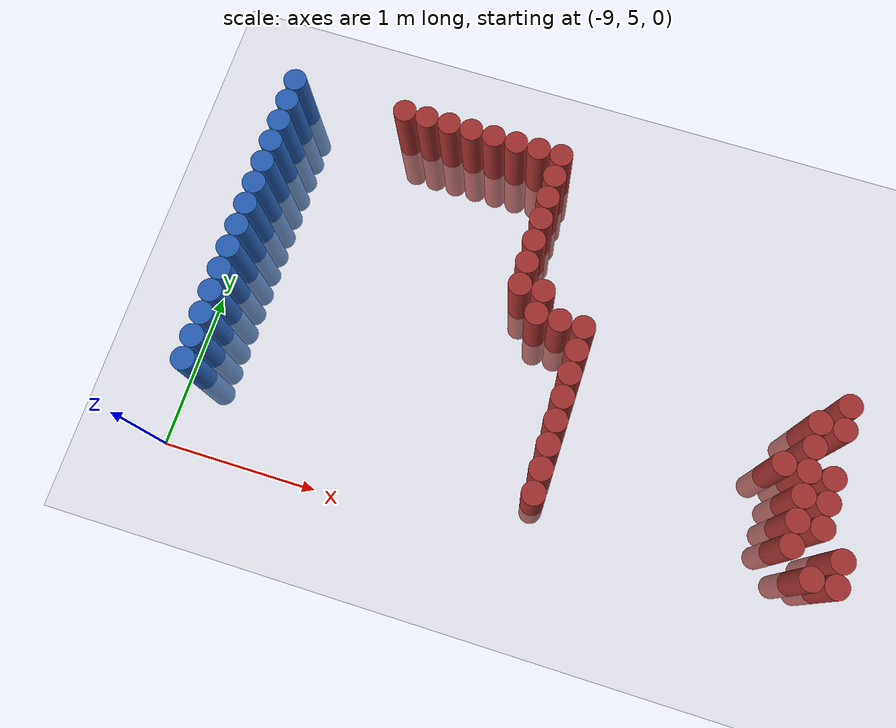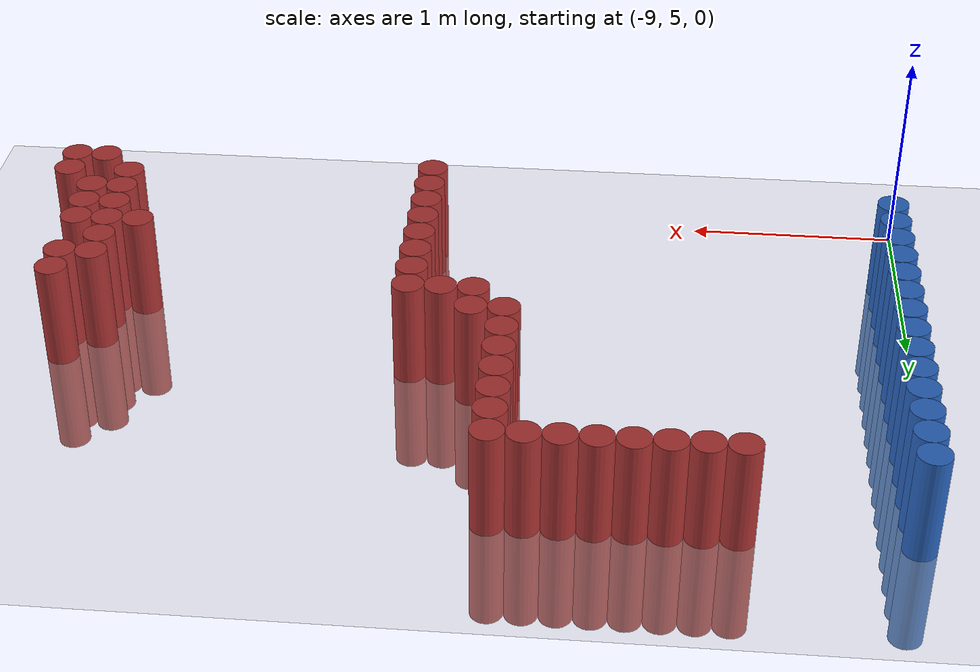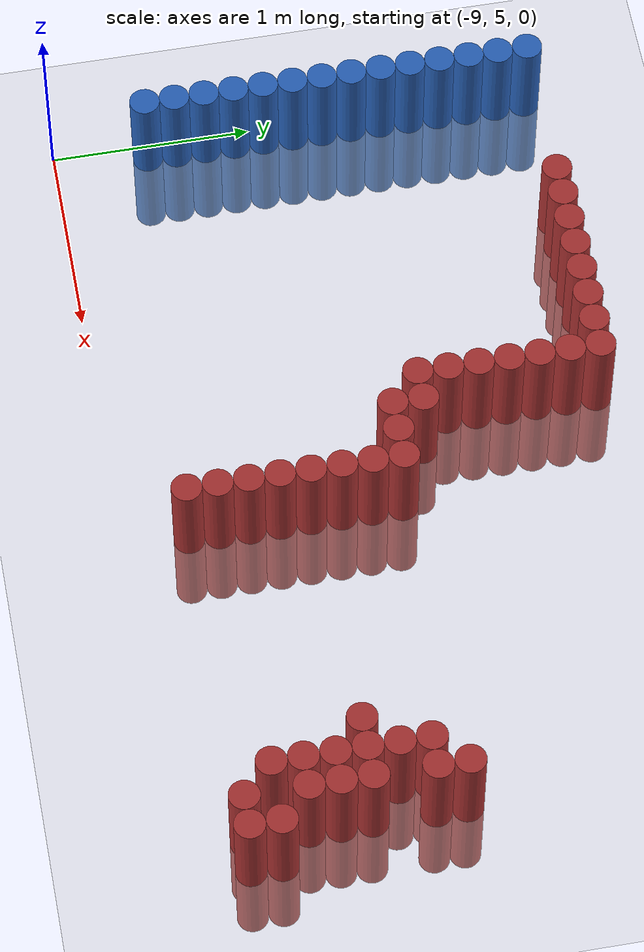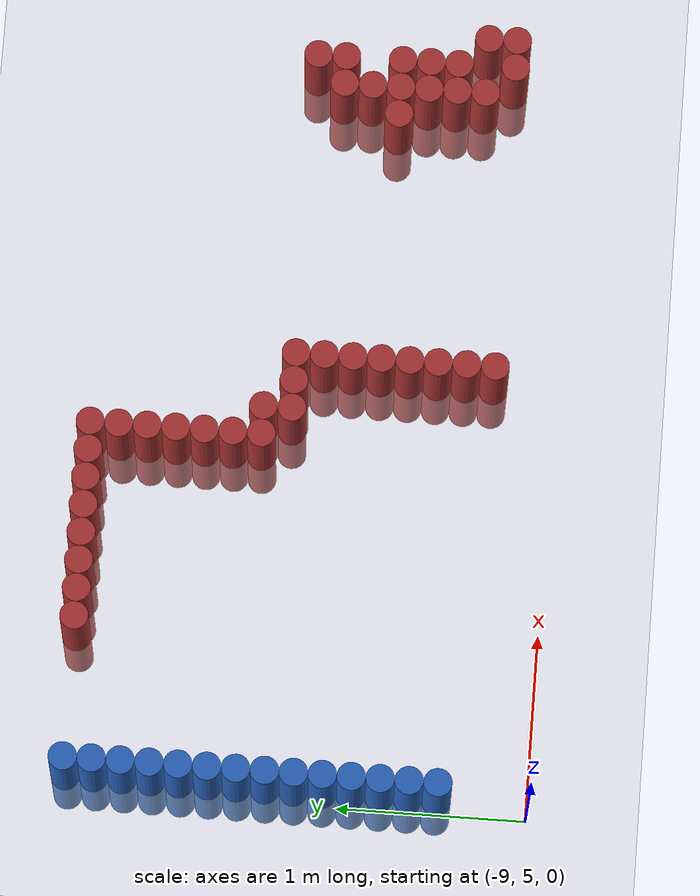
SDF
<sdf version="1.6">
 <world name="default">
  <model name="ground_plane">
   <static>1</static>
   <link name="link">
    <collision name="collision">
     <geometry><plane><normal>0 0 1</normal><size>100 100</size></plane></geometry>
     <surface><friction><ode><mu>100</mu><mu2>50</mu2></ode></friction></surface>
    </collision>
    <visual name="visual">
     <cast_shadows>0</cast_shadows>
     <geometry><plane><normal>0 0 1</normal><size>100 100</size></plane></geometry>
     <material>
      <script><uri>file://media/materials/scripts/gazebo.material</uri><name>Gazebo/Grey</name></script>
     </material>
    </visual>
   </link>
  </model>
  <model name="unit_cylinder_127">
   <static>1</static>
   <pose>-8.925000 5.475000 0.000000 0.000000 0.000000 0.000000</pose>
   <link name="link">
    <inertial>
     <mass>1</mass>
     <inertia><ixx>0.145833</ixx><ixy>0</ixy><ixz>0</ixz><iyy>0.145833</iyy><iyz>0</iyz><izz>0.125</izz></inertia>
    </inertial>
    <collision name="collision">
     <geometry><cylinder><radius>0.075000</radius><length>1</length></cylinder></geometry>
    </collision>
    <visual name="visual">
     <geometry><cylinder><radius>0.075000</radius><length>1</length></cylinder></geometry>
     <material>
      <ambient>0.152000 0.379000 0.720000 1</ambient>
      <diffuse>0.152000 0.379000 0.720000 1</diffuse>
     </material>
     <material>
      <script><name>Gazebo/Grey</name><uri>file://media/materials/scripts/gazebo.material</uri></script>
     </material>
    </visual>
   </link>
  </model>
  <model name="unit_cylinder_128">
   <static>1</static>
   <pose>-8.925000 5.625000 0.000000 0.000000 0.000000 0.000000</pose>
   <link name="link">
    <inertial>
     <mass>1</mass>
     <inertia><ixx>0.145833</ixx><ixy>0</ixy><ixz>0</ixz><iyy>0.145833</iyy><iyz>0</iyz><izz>0.125</izz></inertia>
    </inertial>
    <collision name="collision">
     <geometry><cylinder><radius>0.075000</radius><length>1</length></cylinder></geometry>
    </collision>
    <visual name="visual">
     <geometry><cylinder><radius>0.075000</radius><length>1</length></cylinder></geometry>
     <material>
      <ambient>0.152000 0.379000 0.720000 1</ambient>
      <diffuse>0.152000 0.379000 0.720000 1</diffuse>
     </material>
     <material>
      <script><name>Gazebo/Grey</name><uri>file://media/materials/scripts/gazebo.material</uri></script>
     </material>
    </visual>
   </link>
  </model>
  <model name="unit_cylinder_129">
   <static>1</static>
   <pose>-8.925000 5.775000 0.000000 0.000000 0.000000 0.000000</pose>
   <link name="link">
    <inertial>
     <mass>1</mass>
     <inertia><ixx>0.145833</ixx><ixy>0</ixy><ixz>0</ixz><iyy>0.145833</iyy><iyz>0</iyz><izz>0.125</izz></inertia>
    </inertial>
    <collision name="collision">
     <geometry><cylinder><radius>0.075000</radius><length>1</length></cylinder></geometry>
    </collision>
    <visual name="visual">
     <geometry><cylinder><radius>0.075000</radius><length>1</length></cylinder></geometry>
     <material>
      <ambient>0.152000 0.379000 0.720000 1</ambient>
      <diffuse>0.152000 0.379000 0.720000 1</diffuse>
     </material>
     <material>
      <script><name>Gazebo/Grey</name><uri>file://media/materials/scripts/gazebo.material</uri></script>
     </material>
    </visual>
   </link>
  </model>
  <model name="unit_cylinder_130">
   <static>1</static>
   <pose>-8.925000 5.925000 0.000000 0.000000 0.000000 0.000000</pose>
   <link name="link">
    <inertial>
     <mass>1</mass>
     <inertia><ixx>0.145833</ixx><ixy>0</ixy><ixz>0</ixz><iyy>0.145833</iyy><iyz>0</iyz><izz>0.125</izz></inertia>
    </inertial>
    <collision name="collision">
     <geometry><cylinder><radius>0.075000</radius><length>1</length></cylinder></geometry>
    </collision>
    <visual name="visual">
     <geometry><cylinder><radius>0.075000</radius><length>1</length></cylinder></geometry>
     <material>
      <ambient>0.152000 0.379000 0.720000 1</ambient>
      <diffuse>0.152000 0.379000 0.720000 1</diffuse>
     </material>
     <material>
      <script><name>Gazebo/Grey</name><uri>file://media/materials/scripts/gazebo.material</uri></script>
     </material>
    </visual>
   </link>
  </model>
  <model name="unit_cylinder_131">
   <static>1</static>
   <pose>-8.925000 6.075000 0.000000 0.000000 0.000000 0.000000</pose>
   <link name="link">
    <inertial>
     <mass>1</mass>
     <inertia><ixx>0.145833</ixx><ixy>0</ixy><ixz>0</ixz><iyy>0.145833</iyy><iyz>0</iyz><izz>0.125</izz></inertia>
    </inertial>
    <collision name="collision">
     <geometry><cylinder><radius>0.075000</radius><length>1</length></cylinder></geometry>
    </collision>
    <visual name="visual">
     <geometry><cylinder><radius>0.075000</radius><length>1</length></cylinder></geometry>
     <material>
      <ambient>0.152000 0.379000 0.720000 1</ambient>
      <diffuse>0.152000 0.379000 0.720000 1</diffuse>
     </material>
     <material>
      <script><name>Gazebo/Grey</name><uri>file://media/materials/scripts/gazebo.material</uri></script>
     </material>
    </visual>
   </link>
  </model>
  <model name="unit_cylinder_132">
   <static>1</static>
   <pose>-8.925000 6.225000 0.000000 0.000000 0.000000 0.000000</pose>
   <link name="link">
    <inertial>
     <mass>1</mass>
     <inertia><ixx>0.145833</ixx><ixy>0</ixy><ixz>0</ixz><iyy>0.145833</iyy><iyz>0</iyz><izz>0.125</izz></inertia>
    </inertial>
    <collision name="collision">
     <geometry><cylinder><radius>0.075000</radius><length>1</length></cylinder></geometry>
    </collision>
    <visual name="visual">
     <geometry><cylinder><radius>0.075000</radius><length>1</length></cylinder></geometry>
     <material>
      <ambient>0.152000 0.379000 0.720000 1</ambient>
      <diffuse>0.152000 0.379000 0.720000 1</diffuse>
     </material>
     <material>
      <script><name>Gazebo/Grey</name><uri>file://media/materials/scripts/gazebo.material</uri></script>
     </material>
    </visual>
   </link>
  </model>
  <model name="unit_cylinder_133">
   <static>1</static>
   <pose>-8.925000 6.375000 0.000000 0.000000 0.000000 0.000000</pose>
   <link name="link">
    <inertial>
     <mass>1</mass>
     <inertia><ixx>0.145833</ixx><ixy>0</ixy><ixz>0</ixz><iyy>0.145833</iyy><iyz>0</iyz><izz>0.125</izz></inertia>
    </inertial>
    <collision name="collision">
     <geometry><cylinder><radius>0.075000</radius><length>1</length></cylinder></geometry>
    </collision>
    <visual name="visual">
     <geometry><cylinder><radius>0.075000</radius><length>1</length></cylinder></geometry>
     <material>
      <ambient>0.152000 0.379000 0.720000 1</ambient>
      <diffuse>0.152000 0.379000 0.720000 1</diffuse>
     </material>
     <material>
      <script><name>Gazebo/Grey</name><uri>file://media/materials/scripts/gazebo.material</uri></script>
     </material>
    </visual>
   </link>
  </model>
  <model name="unit_cylinder_134">
   <static>1</static>
   <pose>-8.925000 6.525000 0.000000 0.000000 0.000000 0.000000</pose>
   <link name="link">
    <inertial>
     <mass>1</mass>
     <inertia><ixx>0.145833</ixx><ixy>0</ixy><ixz>0</ixz><iyy>0.145833</iyy><iyz>0</iyz><izz>0.125</izz></inertia>
    </inertial>
    <collision name="collision">
     <geometry><cylinder><radius>0.075000</radius><length>1</length></cylinder></geometry>
    </collision>
    <visual name="visual">
     <geometry><cylinder><radius>0.075000</radius><length>1</length></cylinder></geometry>
     <material>
      <ambient>0.152000 0.379000 0.720000 1</ambient>
      <diffuse>0.152000 0.379000 0.720000 1</diffuse>
     </material>
     <material>
      <script><name>Gazebo/Grey</name><uri>file://media/materials/scripts/gazebo.material</uri></script>
     </material>
    </visual>
   </link>
  </model>
  <model name="unit_cylinder_135">
   <static>1</static>
   <pose>-8.925000 6.675000 0.000000 0.000000 0.000000 0.000000</pose>
   <link name="link">
    <inertial>
     <mass>1</mass>
     <inertia><ixx>0.145833</ixx><ixy>0</ixy><ixz>0</ixz><iyy>0.145833</iyy><iyz>0</iyz><izz>0.125</izz></inertia>
    </inertial>
    <collision name="collision">
     <geometry><cylinder><radius>0.075000</radius><length>1</length></cylinder></geometry>
    </collision>
    <visual name="visual">
     <geometry><cylinder><radius>0.075000</radius><length>1</length></cylinder></geometry>
     <material>
      <ambient>0.152000 0.379000 0.720000 1</ambient>
      <diffuse>0.152000 0.379000 0.720000 1</diffuse>
     </material>
     <material>
      <script><name>Gazebo/Grey</name><uri>file://media/materials/scripts/gazebo.material</uri></script>
     </material>
    </visual>
   </link>
  </model>
  <model name="unit_cylinder_136">
   <static>1</static>
   <pose>-8.925000 6.825000 0.000000 0.000000 0.000000 0.000000</pose>
   <link name="link">
    <inertial>
     <mass>1</mass>
     <inertia><ixx>0.145833</ixx><ixy>0</ixy><ixz>0</ixz><iyy>0.145833</iyy><iyz>0</iyz><izz>0.125</izz></inertia>
    </inertial>
    <collision name="collision">
     <geometry><cylinder><radius>0.075000</radius><length>1</length></cylinder></geometry>
    </collision>
    <visual name="visual">
     <geometry><cylinder><radius>0.075000</radius><length>1</length></cylinder></geometry>
     <material>
      <ambient>0.152000 0.379000 0.720000 1</ambient>
      <diffuse>0.152000 0.379000 0.720000 1</diffuse>
     </material>
     <material>
      <script><name>Gazebo/Grey</name><uri>file://media/materials/scripts/gazebo.material</uri></script>
     </material>
    </visual>
   </link>
  </model>
  <model name="unit_cylinder_137">
   <static>1</static>
   <pose>-8.925000 6.975000 0.000000 0.000000 0.000000 0.000000</pose>
   <link name="link">
    <inertial>
     <mass>1</mass>
     <inertia><ixx>0.145833</ixx><ixy>0</ixy><ixz>0</ixz><iyy>0.145833</iyy><iyz>0</iyz><izz>0.125</izz></inertia>
    </inertial>
    <collision name="collision">
     <geometry><cylinder><radius>0.075000</radius><length>1</length></cylinder></geometry>
    </collision>
    <visual name="visual">
     <geometry><cylinder><radius>0.075000</radius><length>1</length></cylinder></geometry>
     <material>
      <ambient>0.152000 0.379000 0.720000 1</ambient>
      <diffuse>0.152000 0.379000 0.720000 1</diffuse>
     </material>
     <material>
      <script><name>Gazebo/Grey</name><uri>file://media/materials/scripts/gazebo.material</uri></script>
     </material>
    </visual>
   </link>
  </model>
  <model name="unit_cylinder_138">
   <static>1</static>
   <pose>-8.925000 7.125000 0.000000 0.000000 0.000000 0.000000</pose>
   <link name="link">
    <inertial>
     <mass>1</mass>
     <inertia><ixx>0.145833</ixx><ixy>0</ixy><ixz>0</ixz><iyy>0.145833</iyy><iyz>0</iyz><izz>0.125</izz></inertia>
    </inertial>
    <collision name="collision">
     <geometry><cylinder><radius>0.075000</radius><length>1</length></cylinder></geometry>
    </collision>
    <visual name="visual">
     <geometry><cylinder><radius>0.075000</radius><length>1</length></cylinder></geometry>
     <material>
      <ambient>0.152000 0.379000 0.720000 1</ambient>
      <diffuse>0.152000 0.379000 0.720000 1</diffuse>
     </material>
     <material>
      <script><name>Gazebo/Grey</name><uri>file://media/materials/scripts/gazebo.material</uri></script>
     </material>
    </visual>
   </link>
  </model>
  <model name="unit_cylinder_139">
   <static>1</static>
   <pose>-8.925000 7.275000 0.000000 0.000000 0.000000 0.000000</pose>
   <link name="link">
    <inertial>
     <mass>1</mass>
     <inertia><ixx>0.145833</ixx><ixy>0</ixy><ixz>0</ixz><iyy>0.145833</iyy><iyz>0</iyz><izz>0.125</izz></inertia>
    </inertial>
    <collision name="collision">
     <geometry><cylinder><radius>0.075000</radius><length>1</length></cylinder></geometry>
    </collision>
    <visual name="visual">
     <geometry><cylinder><radius>0.075000</radius><length>1</length></cylinder></geometry>
     <material>
      <ambient>0.152000 0.379000 0.720000 1</ambient>
      <diffuse>0.152000 0.379000 0.720000 1</diffuse>
     </material>
     <material>
      <script><name>Gazebo/Grey</name><uri>file://media/materials/scripts/gazebo.material</uri></script>
     </material>
    </visual>
   </link>
  </model>
  <model name="unit_cylinder_140">
   <static>1</static>
   <pose>-8.925000 7.425000 0.000000 0.000000 0.000000 0.000000</pose>
   <link name="link">
    <inertial>
     <mass>1</mass>
     <inertia><ixx>0.145833</ixx><ixy>0</ixy><ixz>0</ixz><iyy>0.145833</iyy><iyz>0</iyz><izz>0.125</izz></inertia>
    </inertial>
    <collision name="collision">
     <geometry><cylinder><radius>0.075000</radius><length>1</length></cylinder></geometry>
    </collision>
    <visual name="visual">
     <geometry><cylinder><radius>0.075000</radius><length>1</length></cylinder></geometry>
     <material>
      <ambient>0.152000 0.379000 0.720000 1</ambient>
      <diffuse>0.152000 0.379000 0.720000 1</diffuse>
     </material>
     <material>
      <script><name>Gazebo/Grey</name><uri>file://media/materials/scripts/gazebo.material</uri></script>
     </material>
    </visual>
   </link>
  </model>
  <model name="unit_cylinder_177">
   <static>1</static>
   <pose>-8.175000 7.425000 0.000000 0.000000 0.000000 0.000000</pose>
   <link name="link">
    <inertial>
     <mass>1</mass>
     <inertia><ixx>0.145833</ixx><ixy>0</ixy><ixz>0</ixz><iyy>0.145833</iyy><iyz>0</iyz><izz>0.125</izz></inertia>
    </inertial>
    <collision name="collision">
     <geometry><cylinder><radius>0.075000</radius><length>1</length></cylinder></geometry>
    </collision>
    <visual name="visual">
     <geometry><cylinder><radius>0.075000</radius><length>1</length></cylinder></geometry>
     <material>
      <ambient>0.648000 0.192000 0.192000 1</ambient>
      <diffuse>0.648000 0.192000 0.192000 1</diffuse>
     </material>
     <material>
      <script><name>Gazebo/Grey</name><uri>file://media/materials/scripts/gazebo.material</uri></script>
     </material>
    </visual>
   </link>
  </model>
  <model name="unit_cylinder_180">
   <static>1</static>
   <pose>-8.025000 7.425000 0.000000 0.000000 0.000000 0.000000</pose>
   <link name="link">
    <inertial>
     <mass>1</mass>
     <inertia><ixx>0.145833</ixx><ixy>0</ixy><ixz>0</ixz><iyy>0.145833</iyy><iyz>0</iyz><izz>0.125</izz></inertia>
    </inertial>
    <collision name="collision">
     <geometry><cylinder><radius>0.075000</radius><length>1</length></cylinder></geometry>
    </collision>
    <visual name="visual">
     <geometry><cylinder><radius>0.075000</radius><length>1</length></cylinder></geometry>
     <material>
      <ambient>0.648000 0.192000 0.192000 1</ambient>
      <diffuse>0.648000 0.192000 0.192000 1</diffuse>
     </material>
     <material>
      <script><name>Gazebo/Grey</name><uri>file://media/materials/scripts/gazebo.material</uri></script>
     </material>
    </visual>
   </link>
  </model>
  <model name="unit_cylinder_182">
   <static>1</static>
   <pose>-7.875000 7.425000 0.000000 0.000000 0.000000 0.000000</pose>
   <link name="link">
    <inertial>
     <mass>1</mass>
     <inertia><ixx>0.145833</ixx><ixy>0</ixy><ixz>0</ixz><iyy>0.145833</iyy><iyz>0</iyz><izz>0.125</izz></inertia>
    </inertial>
    <collision name="collision">
     <geometry><cylinder><radius>0.075000</radius><length>1</length></cylinder></geometry>
    </collision>
    <visual name="visual">
     <geometry><cylinder><radius>0.075000</radius><length>1</length></cylinder></geometry>
     <material>
      <ambient>0.648000 0.192000 0.192000 1</ambient>
      <diffuse>0.648000 0.192000 0.192000 1</diffuse>
     </material>
     <material>
      <script><name>Gazebo/Grey</name><uri>file://media/materials/scripts/gazebo.material</uri></script>
     </material>
    </visual>
   </link>
  </model>
  <model name="unit_cylinder_184">
   <static>1</static>
   <pose>-7.725000 7.425000 0.000000 0.000000 0.000000 0.000000</pose>
   <link name="link">
    <inertial>
     <mass>1</mass>
     <inertia><ixx>0.145833</ixx><ixy>0</ixy><ixz>0</ixz><iyy>0.145833</iyy><iyz>0</iyz><izz>0.125</izz></inertia>
    </inertial>
    <collision name="collision">
     <geometry><cylinder><radius>0.075000</radius><length>1</length></cylinder></geometry>
    </collision>
    <visual name="visual">
     <geometry><cylinder><radius>0.075000</radius><length>1</length></cylinder></geometry>
     <material>
      <ambient>0.648000 0.192000 0.192000 1</ambient>
      <diffuse>0.648000 0.192000 0.192000 1</diffuse>
     </material>
     <material>
      <script><name>Gazebo/Grey</name><uri>file://media/materials/scripts/gazebo.material</uri></script>
     </material>
    </visual>
   </link>
  </model>
  <model name="unit_cylinder_186">
   <static>1</static>
   <pose>-7.575000 7.425000 0.000000 0.000000 0.000000 0.000000</pose>
   <link name="link">
    <inertial>
     <mass>1</mass>
     <inertia><ixx>0.145833</ixx><ixy>0</ixy><ixz>0</ixz><iyy>0.145833</iyy><iyz>0</iyz><izz>0.125</izz></inertia>
    </inertial>
    <collision name="collision">
     <geometry><cylinder><radius>0.075000</radius><length>1</length></cylinder></geometry>
    </collision>
    <visual name="visual">
     <geometry><cylinder><radius>0.075000</radius><length>1</length></cylinder></geometry>
     <material>
      <ambient>0.648000 0.192000 0.192000 1</ambient>
      <diffuse>0.648000 0.192000 0.192000 1</diffuse>
     </material>
     <material>
      <script><name>Gazebo/Grey</name><uri>file://media/materials/scripts/gazebo.material</uri></script>
     </material>
    </visual>
   </link>
  </model>
  <model name="unit_cylinder_188">
   <static>1</static>
   <pose>-7.425000 7.425000 0.000000 0.000000 0.000000 0.000000</pose>
   <link name="link">
    <inertial>
     <mass>1</mass>
     <inertia><ixx>0.145833</ixx><ixy>0</ixy><ixz>0</ixz><iyy>0.145833</iyy><iyz>0</iyz><izz>0.125</izz></inertia>
    </inertial>
    <collision name="collision">
     <geometry><cylinder><radius>0.075000</radius><length>1</length></cylinder></geometry>
    </collision>
    <visual name="visual">
     <geometry><cylinder><radius>0.075000</radius><length>1</length></cylinder></geometry>
     <material>
      <ambient>0.648000 0.192000 0.192000 1</ambient>
      <diffuse>0.648000 0.192000 0.192000 1</diffuse>
     </material>
     <material>
      <script><name>Gazebo/Grey</name><uri>file://media/materials/scripts/gazebo.material</uri></script>
     </material>
    </visual>
   </link>
  </model>
  <model name="unit_cylinder_190">
   <static>1</static>
   <pose>-7.275000 7.425000 0.000000 0.000000 0.000000 0.000000</pose>
   <link name="link">
    <inertial>
     <mass>1</mass>
     <inertia><ixx>0.145833</ixx><ixy>0</ixy><ixz>0</ixz><iyy>0.145833</iyy><iyz>0</iyz><izz>0.125</izz></inertia>
    </inertial>
    <collision name="collision">
     <geometry><cylinder><radius>0.075000</radius><length>1</length></cylinder></geometry>
    </collision>
    <visual name="visual">
     <geometry><cylinder><radius>0.075000</radius><length>1</length></cylinder></geometry>
     <material>
      <ambient>0.648000 0.192000 0.192000 1</ambient>
      <diffuse>0.648000 0.192000 0.192000 1</diffuse>
     </material>
     <material>
      <script><name>Gazebo/Grey</name><uri>file://media/materials/scripts/gazebo.material</uri></script>
     </material>
    </visual>
   </link>
  </model>
  <model name="unit_cylinder_192">
   <static>1</static>
   <pose>-7.125000 6.525000 0.000000 0.000000 0.000000 0.000000</pose>
   <link name="link">
    <inertial>
     <mass>1</mass>
     <inertia><ixx>0.145833</ixx><ixy>0</ixy><ixz>0</ixz><iyy>0.145833</iyy><iyz>0</iyz><izz>0.125</izz></inertia>
    </inertial>
    <collision name="collision">
     <geometry><cylinder><radius>0.075000</radius><length>1</length></cylinder></geometry>
    </collision>
    <visual name="visual">
     <geometry><cylinder><radius>0.075000</radius><length>1</length></cylinder></geometry>
     <material>
      <ambient>0.648000 0.192000 0.192000 1</ambient>
      <diffuse>0.648000 0.192000 0.192000 1</diffuse>
     </material>
     <material>
      <script><name>Gazebo/Grey</name><uri>file://media/materials/scripts/gazebo.material</uri></script>
     </material>
    </visual>
   </link>
  </model>
  <model name="unit_cylinder_193">
   <static>1</static>
   <pose>-7.125000 6.675000 0.000000 0.000000 0.000000 0.000000</pose>
   <link name="link">
    <inertial>
     <mass>1</mass>
     <inertia><ixx>0.145833</ixx><ixy>0</ixy><ixz>0</ixz><iyy>0.145833</iyy><iyz>0</iyz><izz>0.125</izz></inertia>
    </inertial>
    <collision name="collision">
     <geometry><cylinder><radius>0.075000</radius><length>1</length></cylinder></geometry>
    </collision>
    <visual name="visual">
     <geometry><cylinder><radius>0.075000</radius><length>1</length></cylinder></geometry>
     <material>
      <ambient>0.648000 0.192000 0.192000 1</ambient>
      <diffuse>0.648000 0.192000 0.192000 1</diffuse>
     </material>
     <material>
      <script><name>Gazebo/Grey</name><uri>file://media/materials/scripts/gazebo.material</uri></script>
     </material>
    </visual>
   </link>
  </model>
  <model name="unit_cylinder_194">
   <static>1</static>
   <pose>-7.125000 6.825000 0.000000 0.000000 0.000000 0.000000</pose>
   <link name="link">
    <inertial>
     <mass>1</mass>
     <inertia><ixx>0.145833</ixx><ixy>0</ixy><ixz>0</ixz><iyy>0.145833</iyy><iyz>0</iyz><izz>0.125</izz></inertia>
    </inertial>
    <collision name="collision">
     <geometry><cylinder><radius>0.075000</radius><length>1</length></cylinder></geometry>
    </collision>
    <visual name="visual">
     <geometry><cylinder><radius>0.075000</radius><length>1</length></cylinder></geometry>
     <material>
      <ambient>0.648000 0.192000 0.192000 1</ambient>
      <diffuse>0.648000 0.192000 0.192000 1</diffuse>
     </material>
     <material>
      <script><name>Gazebo/Grey</name><uri>file://media/materials/scripts/gazebo.material</uri></script>
     </material>
    </visual>
   </link>
  </model>
  <model name="unit_cylinder_195">
   <static>1</static>
   <pose>-7.125000 6.975000 0.000000 0.000000 0.000000 0.000000</pose>
   <link name="link">
    <inertial>
     <mass>1</mass>
     <inertia><ixx>0.145833</ixx><ixy>0</ixy><ixz>0</ixz><iyy>0.145833</iyy><iyz>0</iyz><izz>0.125</izz></inertia>
    </inertial>
    <collision name="collision">
     <geometry><cylinder><radius>0.075000</radius><length>1</length></cylinder></geometry>
    </collision>
    <visual name="visual">
     <geometry><cylinder><radius>0.075000</radius><length>1</length></cylinder></geometry>
     <material>
      <ambient>0.648000 0.192000 0.192000 1</ambient>
      <diffuse>0.648000 0.192000 0.192000 1</diffuse>
     </material>
     <material>
      <script><name>Gazebo/Grey</name><uri>file://media/materials/scripts/gazebo.material</uri></script>
     </material>
    </visual>
   </link>
  </model>
  <model name="unit_cylinder_196">
   <static>1</static>
   <pose>-7.125000 7.125000 0.000000 0.000000 0.000000 0.000000</pose>
   <link name="link">
    <inertial>
     <mass>1</mass>
     <inertia><ixx>0.145833</ixx><ixy>0</ixy><ixz>0</ixz><iyy>0.145833</iyy><iyz>0</iyz><izz>0.125</izz></inertia>
    </inertial>
    <collision name="collision">
     <geometry><cylinder><radius>0.075000</radius><length>1</length></cylinder></geometry>
    </collision>
    <visual name="visual">
     <geometry><cylinder><radius>0.075000</radius><length>1</length></cylinder></geometry>
     <material>
      <ambient>0.648000 0.192000 0.192000 1</ambient>
      <diffuse>0.648000 0.192000 0.192000 1</diffuse>
     </material>
     <material>
      <script><name>Gazebo/Grey</name><uri>file://media/materials/scripts/gazebo.material</uri></script>
     </material>
    </visual>
   </link>
  </model>
  <model name="unit_cylinder_197">
   <static>1</static>
   <pose>-7.125000 7.275000 0.000000 0.000000 0.000000 0.000000</pose>
   <link name="link">
    <inertial>
     <mass>1</mass>
     <inertia><ixx>0.145833</ixx><ixy>0</ixy><ixz>0</ixz><iyy>0.145833</iyy><iyz>0</iyz><izz>0.125</izz></inertia>
    </inertial>
    <collision name="collision">
     <geometry><cylinder><radius>0.075000</radius><length>1</length></cylinder></geometry>
    </collision>
    <visual name="visual">
     <geometry><cylinder><radius>0.075000</radius><length>1</length></cylinder></geometry>
     <material>
      <ambient>0.648000 0.192000 0.192000 1</ambient>
      <diffuse>0.648000 0.192000 0.192000 1</diffuse>
     </material>
     <material>
      <script><name>Gazebo/Grey</name><uri>file://media/materials/scripts/gazebo.material</uri></script>
     </material>
    </visual>
   </link>
  </model>
  <model name="unit_cylinder_198">
   <static>1</static>
   <pose>-7.125000 7.425000 0.000000 0.000000 0.000000 0.000000</pose>
   <link name="link">
    <inertial>
     <mass>1</mass>
     <inertia><ixx>0.145833</ixx><ixy>0</ixy><ixz>0</ixz><iyy>0.145833</iyy><iyz>0</iyz><izz>0.125</izz></inertia>
    </inertial>
    <collision name="collision">
     <geometry><cylinder><radius>0.075000</radius><length>1</length></cylinder></geometry>
    </collision>
    <visual name="visual">
     <geometry><cylinder><radius>0.075000</radius><length>1</length></cylinder></geometry>
     <material>
      <ambient>0.648000 0.192000 0.192000 1</ambient>
      <diffuse>0.648000 0.192000 0.192000 1</diffuse>
     </material>
     <material>
      <script><name>Gazebo/Grey</name><uri>file://media/materials/scripts/gazebo.material</uri></script>
     </material>
    </visual>
   </link>
  </model>
  <model name="unit_cylinder_200">
   <static>1</static>
   <pose>-6.975000 6.375000 0.000000 0.000000 0.000000 0.000000</pose>
   <link name="link">
    <inertial>
     <mass>1</mass>
     <inertia><ixx>0.145833</ixx><ixy>0</ixy><ixz>0</ixz><iyy>0.145833</iyy><iyz>0</iyz><izz>0.125</izz></inertia>
    </inertial>
    <collision name="collision">
     <geometry><cylinder><radius>0.075000</radius><length>1</length></cylinder></geometry>
    </collision>
    <visual name="visual">
     <geometry><cylinder><radius>0.075000</radius><length>1</length></cylinder></geometry>
     <material>
      <ambient>0.648000 0.192000 0.192000 1</ambient>
      <diffuse>0.648000 0.192000 0.192000 1</diffuse>
     </material>
     <material>
      <script><name>Gazebo/Grey</name><uri>file://media/materials/scripts/gazebo.material</uri></script>
     </material>
    </visual>
   </link>
  </model>
  <model name="unit_cylinder_201">
   <static>1</static>
   <pose>-6.975000 6.525000 0.000000 0.000000 0.000000 0.000000</pose>
   <link name="link">
    <inertial>
     <mass>1</mass>
     <inertia><ixx>0.145833</ixx><ixy>0</ixy><ixz>0</ixz><iyy>0.145833</iyy><iyz>0</iyz><izz>0.125</izz></inertia>
    </inertial>
    <collision name="collision">
     <geometry><cylinder><radius>0.075000</radius><length>1</length></cylinder></geometry>
    </collision>
    <visual name="visual">
     <geometry><cylinder><radius>0.075000</radius><length>1</length></cylinder></geometry>
     <material>
      <ambient>0.648000 0.192000 0.192000 1</ambient>
      <diffuse>0.648000 0.192000 0.192000 1</diffuse>
     </material>
     <material>
      <script><name>Gazebo/Grey</name><uri>file://media/materials/scripts/gazebo.material</uri></script>
     </material>
    </visual>
   </link>
  </model>
  <model name="unit_cylinder_206">
   <static>1</static>
   <pose>-6.825000 6.375000 0.000000 0.000000 0.000000 0.000000</pose>
   <link name="link">
    <inertial>
     <mass>1</mass>
     <inertia><ixx>0.145833</ixx><ixy>0</ixy><ixz>0</ixz><iyy>0.145833</iyy><iyz>0</iyz><izz>0.125</izz></inertia>
    </inertial>
    <collision name="collision">
     <geometry><cylinder><radius>0.075000</radius><length>1</length></cylinder></geometry>
    </collision>
    <visual name="visual">
     <geometry><cylinder><radius>0.075000</radius><length>1</length></cylinder></geometry>
     <material>
      <ambient>0.648000 0.192000 0.192000 1</ambient>
      <diffuse>0.648000 0.192000 0.192000 1</diffuse>
     </material>
     <material>
      <script><name>Gazebo/Grey</name><uri>file://media/materials/scripts/gazebo.material</uri></script>
     </material>
    </visual>
   </link>
  </model>
  <model name="unit_cylinder_214">
   <static>1</static>
   <pose>-6.675000 5.325000 0.000000 0.000000 0.000000 0.000000</pose>
   <link name="link">
    <inertial>
     <mass>1</mass>
     <inertia><ixx>0.145833</ixx><ixy>0</ixy><ixz>0</ixz><iyy>0.145833</iyy><iyz>0</iyz><izz>0.125</izz></inertia>
    </inertial>
    <collision name="collision">
     <geometry><cylinder><radius>0.075000</radius><length>1</length></cylinder></geometry>
    </collision>
    <visual name="visual">
     <geometry><cylinder><radius>0.075000</radius><length>1</length></cylinder></geometry>
     <material>
      <ambient>0.648000 0.192000 0.192000 1</ambient>
      <diffuse>0.648000 0.192000 0.192000 1</diffuse>
     </material>
     <material>
      <script><name>Gazebo/Grey</name><uri>file://media/materials/scripts/gazebo.material</uri></script>
     </material>
    </visual>
   </link>
  </model>
  <model name="unit_cylinder_215">
   <static>1</static>
   <pose>-6.675000 5.475000 0.000000 0.000000 0.000000 0.000000</pose>
   <link name="link">
    <inertial>
     <mass>1</mass>
     <inertia><ixx>0.145833</ixx><ixy>0</ixy><ixz>0</ixz><iyy>0.145833</iyy><iyz>0</iyz><izz>0.125</izz></inertia>
    </inertial>
    <collision name="collision">
     <geometry><cylinder><radius>0.075000</radius><length>1</length></cylinder></geometry>
    </collision>
    <visual name="visual">
     <geometry><cylinder><radius>0.075000</radius><length>1</length></cylinder></geometry>
     <material>
      <ambient>0.648000 0.192000 0.192000 1</ambient>
      <diffuse>0.648000 0.192000 0.192000 1</diffuse>
     </material>
     <material>
      <script><name>Gazebo/Grey</name><uri>file://media/materials/scripts/gazebo.material</uri></script>
     </material>
    </visual>
   </link>
  </model>
  <model name="unit_cylinder_216">
   <static>1</static>
   <pose>-6.675000 5.625000 0.000000 0.000000 0.000000 0.000000</pose>
   <link name="link">
    <inertial>
     <mass>1</mass>
     <inertia><ixx>0.145833</ixx><ixy>0</ixy><ixz>0</ixz><iyy>0.145833</iyy><iyz>0</iyz><izz>0.125</izz></inertia>
    </inertial>
    <collision name="collision">
     <geometry><cylinder><radius>0.075000</radius><length>1</length></cylinder></geometry>
    </collision>
    <visual name="visual">
     <geometry><cylinder><radius>0.075000</radius><length>1</length></cylinder></geometry>
     <material>
      <ambient>0.648000 0.192000 0.192000 1</ambient>
      <diffuse>0.648000 0.192000 0.192000 1</diffuse>
     </material>
     <material>
      <script><name>Gazebo/Grey</name><uri>file://media/materials/scripts/gazebo.material</uri></script>
     </material>
    </visual>
   </link>
  </model>
  <model name="unit_cylinder_217">
   <static>1</static>
   <pose>-6.675000 5.775000 0.000000 0.000000 0.000000 0.000000</pose>
   <link name="link">
    <inertial>
     <mass>1</mass>
     <inertia><ixx>0.145833</ixx><ixy>0</ixy><ixz>0</ixz><iyy>0.145833</iyy><iyz>0</iyz><izz>0.125</izz></inertia>
    </inertial>
    <collision name="collision">
     <geometry><cylinder><radius>0.075000</radius><length>1</length></cylinder></geometry>
    </collision>
    <visual name="visual">
     <geometry><cylinder><radius>0.075000</radius><length>1</length></cylinder></geometry>
     <material>
      <ambient>0.648000 0.192000 0.192000 1</ambient>
      <diffuse>0.648000 0.192000 0.192000 1</diffuse>
     </material>
     <material>
      <script><name>Gazebo/Grey</name><uri>file://media/materials/scripts/gazebo.material</uri></script>
     </material>
    </visual>
   </link>
  </model>
  <model name="unit_cylinder_218">
   <static>1</static>
   <pose>-6.675000 5.925000 0.000000 0.000000 0.000000 0.000000</pose>
   <link name="link">
    <inertial>
     <mass>1</mass>
     <inertia><ixx>0.145833</ixx><ixy>0</ixy><ixz>0</ixz><iyy>0.145833</iyy><iyz>0</iyz><izz>0.125</izz></inertia>
    </inertial>
    <collision name="collision">
     <geometry><cylinder><radius>0.075000</radius><length>1</length></cylinder></geometry>
    </collision>
    <visual name="visual">
     <geometry><cylinder><radius>0.075000</radius><length>1</length></cylinder></geometry>
     <material>
      <ambient>0.648000 0.192000 0.192000 1</ambient>
      <diffuse>0.648000 0.192000 0.192000 1</diffuse>
     </material>
     <material>
      <script><name>Gazebo/Grey</name><uri>file://media/materials/scripts/gazebo.material</uri></script>
     </material>
    </visual>
   </link>
  </model>
  <model name="unit_cylinder_219">
   <static>1</static>
   <pose>-6.675000 6.075000 0.000000 0.000000 0.000000 0.000000</pose>
   <link name="link">
    <inertial>
     <mass>1</mass>
     <inertia><ixx>0.145833</ixx><ixy>0</ixy><ixz>0</ixz><iyy>0.145833</iyy><iyz>0</iyz><izz>0.125</izz></inertia>
    </inertial>
    <collision name="collision">
     <geometry><cylinder><radius>0.075000</radius><length>1</length></cylinder></geometry>
    </collision>
    <visual name="visual">
     <geometry><cylinder><radius>0.075000</radius><length>1</length></cylinder></geometry>
     <material>
      <ambient>0.648000 0.192000 0.192000 1</ambient>
      <diffuse>0.648000 0.192000 0.192000 1</diffuse>
     </material>
     <material>
      <script><name>Gazebo/Grey</name><uri>file://media/materials/scripts/gazebo.material</uri></script>
     </material>
    </visual>
   </link>
  </model>
  <model name="unit_cylinder_220">
   <static>1</static>
   <pose>-6.675000 6.225000 0.000000 0.000000 0.000000 0.000000</pose>
   <link name="link">
    <inertial>
     <mass>1</mass>
     <inertia><ixx>0.145833</ixx><ixy>0</ixy><ixz>0</ixz><iyy>0.145833</iyy><iyz>0</iyz><izz>0.125</izz></inertia>
    </inertial>
    <collision name="collision">
     <geometry><cylinder><radius>0.075000</radius><length>1</length></cylinder></geometry>
    </collision>
    <visual name="visual">
     <geometry><cylinder><radius>0.075000</radius><length>1</length></cylinder></geometry>
     <material>
      <ambient>0.648000 0.192000 0.192000 1</ambient>
      <diffuse>0.648000 0.192000 0.192000 1</diffuse>
     </material>
     <material>
      <script><name>Gazebo/Grey</name><uri>file://media/materials/scripts/gazebo.material</uri></script>
     </material>
    </visual>
   </link>
  </model>
  <model name="unit_cylinder_221">
   <static>1</static>
   <pose>-6.675000 6.375000 0.000000 0.000000 0.000000 0.000000</pose>
   <link name="link">
    <inertial>
     <mass>1</mass>
     <inertia><ixx>0.145833</ixx><ixy>0</ixy><ixz>0</ixz><iyy>0.145833</iyy><iyz>0</iyz><izz>0.125</izz></inertia>
    </inertial>
    <collision name="collision">
     <geometry><cylinder><radius>0.075000</radius><length>1</length></cylinder></geometry>
    </collision>
    <visual name="visual">
     <geometry><cylinder><radius>0.075000</radius><length>1</length></cylinder></geometry>
     <material>
      <ambient>0.648000 0.192000 0.192000 1</ambient>
      <diffuse>0.648000 0.192000 0.192000 1</diffuse>
     </material>
     <material>
      <script><name>Gazebo/Grey</name><uri>file://media/materials/scripts/gazebo.material</uri></script>
     </material>
    </visual>
   </link>
  </model>
  <model name="unit_cylinder_235">
   <static>1</static>
   <pose>-5.325000 5.925000 0.000000 0.000000 0.000000 0.000000</pose>
   <link name="link">
    <inertial>
     <mass>1</mass>
     <inertia><ixx>0.145833</ixx><ixy>0</ixy><ixz>0</ixz><iyy>0.145833</iyy><iyz>0</iyz><izz>0.125</izz></inertia>
    </inertial>
    <collision name="collision">
     <geometry><cylinder><radius>0.075000</radius><length>1</length></cylinder></geometry>
    </collision>
    <visual name="visual">
     <geometry><cylinder><radius>0.075000</radius><length>1</length></cylinder></geometry>
     <material>
      <ambient>0.648000 0.192000 0.192000 1</ambient>
      <diffuse>0.648000 0.192000 0.192000 1</diffuse>
     </material>
     <material>
      <script><name>Gazebo/Grey</name><uri>file://media/materials/scripts/gazebo.material</uri></script>
     </material>
    </visual>
   </link>
  </model>
  <model name="unit_cylinder_236">
   <static>1</static>
   <pose>-5.175000 5.475000 0.000000 0.000000 0.000000 0.000000</pose>
   <link name="link">
    <inertial>
     <mass>1</mass>
     <inertia><ixx>0.145833</ixx><ixy>0</ixy><ixz>0</ixz><iyy>0.145833</iyy><iyz>0</iyz><izz>0.125</izz></inertia>
    </inertial>
    <collision name="collision">
     <geometry><cylinder><radius>0.075000</radius><length>1</length></cylinder></geometry>
    </collision>
    <visual name="visual">
     <geometry><cylinder><radius>0.075000</radius><length>1</length></cylinder></geometry>
     <material>
      <ambient>0.648000 0.192000 0.192000 1</ambient>
      <diffuse>0.648000 0.192000 0.192000 1</diffuse>
     </material>
     <material>
      <script><name>Gazebo/Grey</name><uri>file://media/materials/scripts/gazebo.material</uri></script>
     </material>
    </visual>
   </link>
  </model>
  <model name="unit_cylinder_237">
   <static>1</static>
   <pose>-5.175000 5.625000 0.000000 0.000000 0.000000 0.000000</pose>
   <link name="link">
    <inertial>
     <mass>1</mass>
     <inertia><ixx>0.145833</ixx><ixy>0</ixy><ixz>0</ixz><iyy>0.145833</iyy><iyz>0</iyz><izz>0.125</izz></inertia>
    </inertial>
    <collision name="collision">
     <geometry><cylinder><radius>0.075000</radius><length>1</length></cylinder></geometry>
    </collision>
    <visual name="visual">
     <geometry><cylinder><radius>0.075000</radius><length>1</length></cylinder></geometry>
     <material>
      <ambient>0.648000 0.192000 0.192000 1</ambient>
      <diffuse>0.648000 0.192000 0.192000 1</diffuse>
     </material>
     <material>
      <script><name>Gazebo/Grey</name><uri>file://media/materials/scripts/gazebo.material</uri></script>
     </material>
    </visual>
   </link>
  </model>
  <model name="unit_cylinder_238">
   <static>1</static>
   <pose>-5.175000 5.775000 0.000000 0.000000 0.000000 0.000000</pose>
   <link name="link">
    <inertial>
     <mass>1</mass>
     <inertia><ixx>0.145833</ixx><ixy>0</ixy><ixz>0</ixz><iyy>0.145833</iyy><iyz>0</iyz><izz>0.125</izz></inertia>
    </inertial>
    <collision name="collision">
     <geometry><cylinder><radius>0.075000</radius><length>1</length></cylinder></geometry>
    </collision>
    <visual name="visual">
     <geometry><cylinder><radius>0.075000</radius><length>1</length></cylinder></geometry>
     <material>
      <ambient>0.648000 0.192000 0.192000 1</ambient>
      <diffuse>0.648000 0.192000 0.192000 1</diffuse>
     </material>
     <material>
      <script><name>Gazebo/Grey</name><uri>file://media/materials/scripts/gazebo.material</uri></script>
     </material>
    </visual>
   </link>
  </model>
  <model name="unit_cylinder_239">
   <static>1</static>
   <pose>-5.175000 5.925000 0.000000 0.000000 0.000000 0.000000</pose>
   <link name="link">
    <inertial>
     <mass>1</mass>
     <inertia><ixx>0.145833</ixx><ixy>0</ixy><ixz>0</ixz><iyy>0.145833</iyy><iyz>0</iyz><izz>0.125</izz></inertia>
    </inertial>
    <collision name="collision">
     <geometry><cylinder><radius>0.075000</radius><length>1</length></cylinder></geometry>
    </collision>
    <visual name="visual">
     <geometry><cylinder><radius>0.075000</radius><length>1</length></cylinder></geometry>
     <material>
      <ambient>0.648000 0.192000 0.192000 1</ambient>
      <diffuse>0.648000 0.192000 0.192000 1</diffuse>
     </material>
     <material>
      <script><name>Gazebo/Grey</name><uri>file://media/materials/scripts/gazebo.material</uri></script>
     </material>
    </visual>
   </link>
  </model>
  <model name="unit_cylinder_240">
   <static>1</static>
   <pose>-5.175000 6.075000 0.000000 0.000000 0.000000 0.000000</pose>
   <link name="link">
    <inertial>
     <mass>1</mass>
     <inertia><ixx>0.145833</ixx><ixy>0</ixy><ixz>0</ixz><iyy>0.145833</iyy><iyz>0</iyz><izz>0.125</izz></inertia>
    </inertial>
    <collision name="collision">
     <geometry><cylinder><radius>0.075000</radius><length>1</length></cylinder></geometry>
    </collision>
    <visual name="visual">
     <geometry><cylinder><radius>0.075000</radius><length>1</length></cylinder></geometry>
     <material>
      <ambient>0.648000 0.192000 0.192000 1</ambient>
      <diffuse>0.648000 0.192000 0.192000 1</diffuse>
     </material>
     <material>
      <script><name>Gazebo/Grey</name><uri>file://media/materials/scripts/gazebo.material</uri></script>
     </material>
    </visual>
   </link>
  </model>
  <model name="unit_cylinder_241">
   <static>1</static>
   <pose>-5.175000 6.225000 0.000000 0.000000 0.000000 0.000000</pose>
   <link name="link">
    <inertial>
     <mass>1</mass>
     <inertia><ixx>0.145833</ixx><ixy>0</ixy><ixz>0</ixz><iyy>0.145833</iyy><iyz>0</iyz><izz>0.125</izz></inertia>
    </inertial>
    <collision name="collision">
     <geometry><cylinder><radius>0.075000</radius><length>1</length></cylinder></geometry>
    </collision>
    <visual name="visual">
     <geometry><cylinder><radius>0.075000</radius><length>1</length></cylinder></geometry>
     <material>
      <ambient>0.648000 0.192000 0.192000 1</ambient>
      <diffuse>0.648000 0.192000 0.192000 1</diffuse>
     </material>
     <material>
      <script><name>Gazebo/Grey</name><uri>file://media/materials/scripts/gazebo.material</uri></script>
     </material>
    </visual>
   </link>
  </model>
  <model name="unit_cylinder_242">
   <static>1</static>
   <pose>-5.025000 5.325000 0.000000 0.000000 0.000000 0.000000</pose>
   <link name="link">
    <inertial>
     <mass>1</mass>
     <inertia><ixx>0.145833</ixx><ixy>0</ixy><ixz>0</ixz><iyy>0.145833</iyy><iyz>0</iyz><izz>0.125</izz></inertia>
    </inertial>
    <collision name="collision">
     <geometry><cylinder><radius>0.075000</radius><length>1</length></cylinder></geometry>
    </collision>
    <visual name="visual">
     <geometry><cylinder><radius>0.075000</radius><length>1</length></cylinder></geometry>
     <material>
      <ambient>0.648000 0.192000 0.192000 1</ambient>
      <diffuse>0.648000 0.192000 0.192000 1</diffuse>
     </material>
     <material>
      <script><name>Gazebo/Grey</name><uri>file://media/materials/scripts/gazebo.material</uri></script>
     </material>
    </visual>
   </link>
  </model>
  <model name="unit_cylinder_243">
   <static>1</static>
   <pose>-5.025000 5.625000 0.000000 0.000000 0.000000 0.000000</pose>
   <link name="link">
    <inertial>
     <mass>1</mass>
     <inertia><ixx>0.145833</ixx><ixy>0</ixy><ixz>0</ixz><iyy>0.145833</iyy><iyz>0</iyz><izz>0.125</izz></inertia>
    </inertial>
    <collision name="collision">
     <geometry><cylinder><radius>0.075000</radius><length>1</length></cylinder></geometry>
    </collision>
    <visual name="visual">
     <geometry><cylinder><radius>0.075000</radius><length>1</length></cylinder></geometry>
     <material>
      <ambient>0.648000 0.192000 0.192000 1</ambient>
      <diffuse>0.648000 0.192000 0.192000 1</diffuse>
     </material>
     <material>
      <script><name>Gazebo/Grey</name><uri>file://media/materials/scripts/gazebo.material</uri></script>
     </material>
    </visual>
   </link>
  </model>
  <model name="unit_cylinder_244">
   <static>1</static>
   <pose>-5.025000 5.775000 0.000000 0.000000 0.000000 0.000000</pose>
   <link name="link">
    <inertial>
     <mass>1</mass>
     <inertia><ixx>0.145833</ixx><ixy>0</ixy><ixz>0</ixz><iyy>0.145833</iyy><iyz>0</iyz><izz>0.125</izz></inertia>
    </inertial>
    <collision name="collision">
     <geometry><cylinder><radius>0.075000</radius><length>1</length></cylinder></geometry>
    </collision>
    <visual name="visual">
     <geometry><cylinder><radius>0.075000</radius><length>1</length></cylinder></geometry>
     <material>
      <ambient>0.648000 0.192000 0.192000 1</ambient>
      <diffuse>0.648000 0.192000 0.192000 1</diffuse>
     </material>
     <material>
      <script><name>Gazebo/Grey</name><uri>file://media/materials/scripts/gazebo.material</uri></script>
     </material>
    </visual>
   </link>
  </model>
  <model name="unit_cylinder_245">
   <static>1</static>
   <pose>-5.025000 5.925000 0.000000 0.000000 0.000000 0.000000</pose>
   <link name="link">
    <inertial>
     <mass>1</mass>
     <inertia><ixx>0.145833</ixx><ixy>0</ixy><ixz>0</ixz><iyy>0.145833</iyy><iyz>0</iyz><izz>0.125</izz></inertia>
    </inertial>
    <collision name="collision">
     <geometry><cylinder><radius>0.075000</radius><length>1</length></cylinder></geometry>
    </collision>
    <visual name="visual">
     <geometry><cylinder><radius>0.075000</radius><length>1</length></cylinder></geometry>
     <material>
      <ambient>0.648000 0.192000 0.192000 1</ambient>
      <diffuse>0.648000 0.192000 0.192000 1</diffuse>
     </material>
     <material>
      <script><name>Gazebo/Grey</name><uri>file://media/materials/scripts/gazebo.material</uri></script>
     </material>
    </visual>
   </link>
  </model>
  <model name="unit_cylinder_246">
   <static>1</static>
   <pose>-5.025000 6.225000 0.000000 0.000000 0.000000 0.000000</pose>
   <link name="link">
    <inertial>
     <mass>1</mass>
     <inertia><ixx>0.145833</ixx><ixy>0</ixy><ixz>0</ixz><iyy>0.145833</iyy><iyz>0</iyz><izz>0.125</izz></inertia>
    </inertial>
    <collision name="collision">
     <geometry><cylinder><radius>0.075000</radius><length>1</length></cylinder></geometry>
    </collision>
    <visual name="visual">
     <geometry><cylinder><radius>0.075000</radius><length>1</length></cylinder></geometry>
     <material>
      <ambient>0.648000 0.192000 0.192000 1</ambient>
      <diffuse>0.648000 0.192000 0.192000 1</diffuse>
     </material>
     <material>
      <script><name>Gazebo/Grey</name><uri>file://media/materials/scripts/gazebo.material</uri></script>
     </material>
    </visual>
   </link>
  </model>
  <model name="unit_cylinder_247">
   <static>1</static>
   <pose>-5.025000 6.375000 0.000000 0.000000 0.000000 0.000000</pose>
   <link name="link">
    <inertial>
     <mass>1</mass>
     <inertia><ixx>0.145833</ixx><ixy>0</ixy><ixz>0</ixz><iyy>0.145833</iyy><iyz>0</iyz><izz>0.125</izz></inertia>
    </inertial>
    <collision name="collision">
     <geometry><cylinder><radius>0.075000</radius><length>1</length></cylinder></geometry>
    </collision>
    <visual name="visual">
     <geometry><cylinder><radius>0.075000</radius><length>1</length></cylinder></geometry>
     <material>
      <ambient>0.648000 0.192000 0.192000 1</ambient>
      <diffuse>0.648000 0.192000 0.192000 1</diffuse>
     </material>
     <material>
      <script><name>Gazebo/Grey</name><uri>file://media/materials/scripts/gazebo.material</uri></script>
     </material>
    </visual>
   </link>
  </model>
  <model name="unit_cylinder_248">
   <static>1</static>
   <pose>-4.875000 5.325000 0.000000 0.000000 0.000000 0.000000</pose>
   <link name="link">
    <inertial>
     <mass>1</mass>
     <inertia><ixx>0.145833</ixx><ixy>0</ixy><ixz>0</ixz><iyy>0.145833</iyy><iyz>0</iyz><izz>0.125</izz></inertia>
    </inertial>
    <collision name="collision">
     <geometry><cylinder><radius>0.075000</radius><length>1</length></cylinder></geometry>
    </collision>
    <visual name="visual">
     <geometry><cylinder><radius>0.075000</radius><length>1</length></cylinder></geometry>
     <material>
      <ambient>0.648000 0.192000 0.192000 1</ambient>
      <diffuse>0.648000 0.192000 0.192000 1</diffuse>
     </material>
     <material>
      <script><name>Gazebo/Grey</name><uri>file://media/materials/scripts/gazebo.material</uri></script>
     </material>
    </visual>
   </link>
  </model>
  <model name="unit_cylinder_249">
   <static>1</static>
   <pose>-4.875000 5.475000 0.000000 0.000000 0.000000 0.000000</pose>
   <link name="link">
    <inertial>
     <mass>1</mass>
     <inertia><ixx>0.145833</ixx><ixy>0</ixy><ixz>0</ixz><iyy>0.145833</iyy><iyz>0</iyz><izz>0.125</izz></inertia>
    </inertial>
    <collision name="collision">
     <geometry><cylinder><radius>0.075000</radius><length>1</length></cylinder></geometry>
    </collision>
    <visual name="visual">
     <geometry><cylinder><radius>0.075000</radius><length>1</length></cylinder></geometry>
     <material>
      <ambient>0.648000 0.192000 0.192000 1</ambient>
      <diffuse>0.648000 0.192000 0.192000 1</diffuse>
     </material>
     <material>
      <script><name>Gazebo/Grey</name><uri>file://media/materials/scripts/gazebo.material</uri></script>
     </material>
    </visual>
   </link>
  </model>
 </world>
</sdf>
